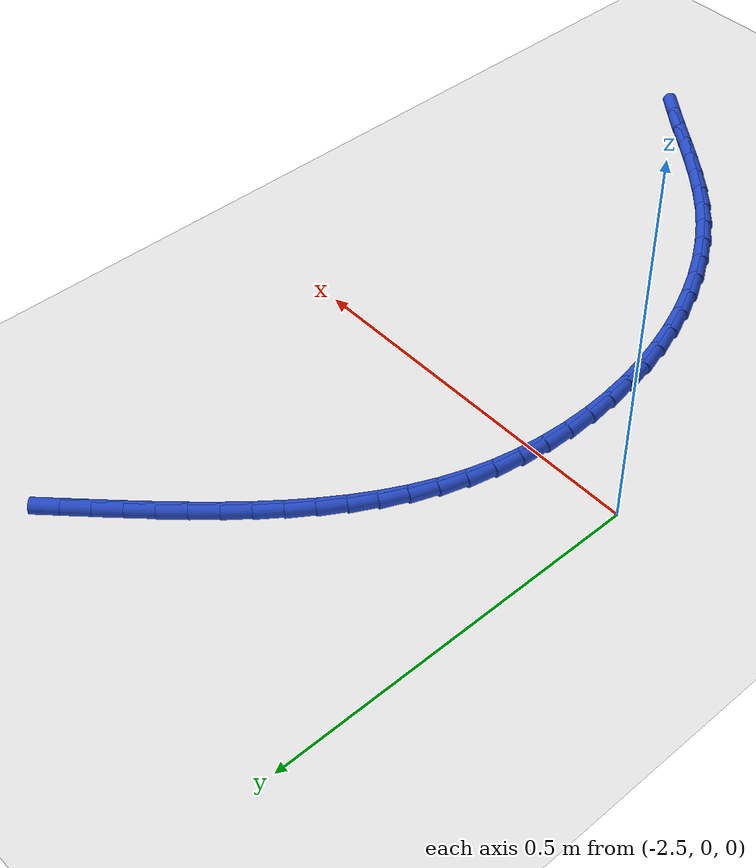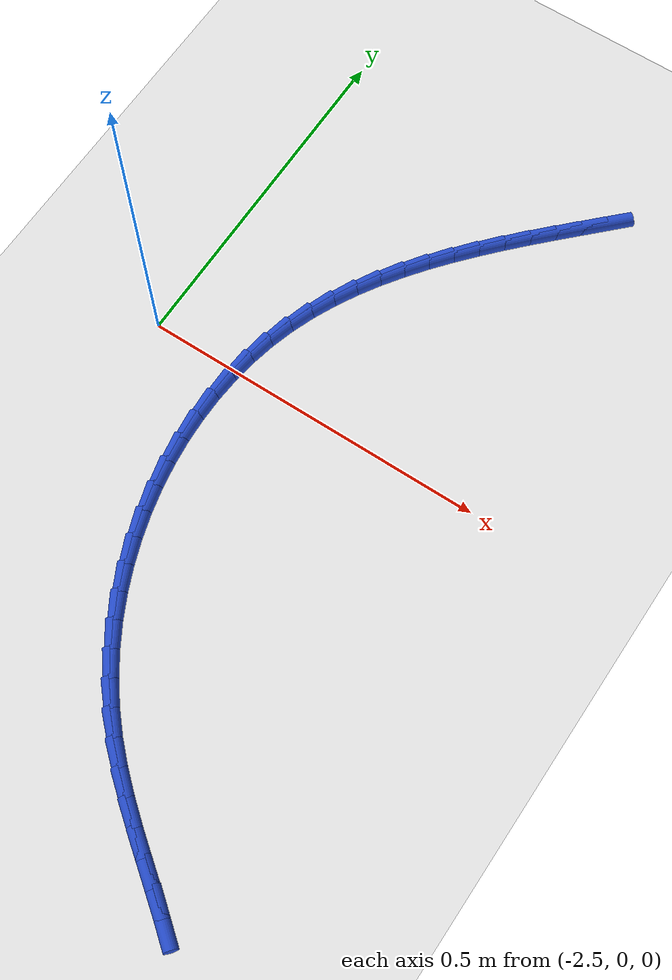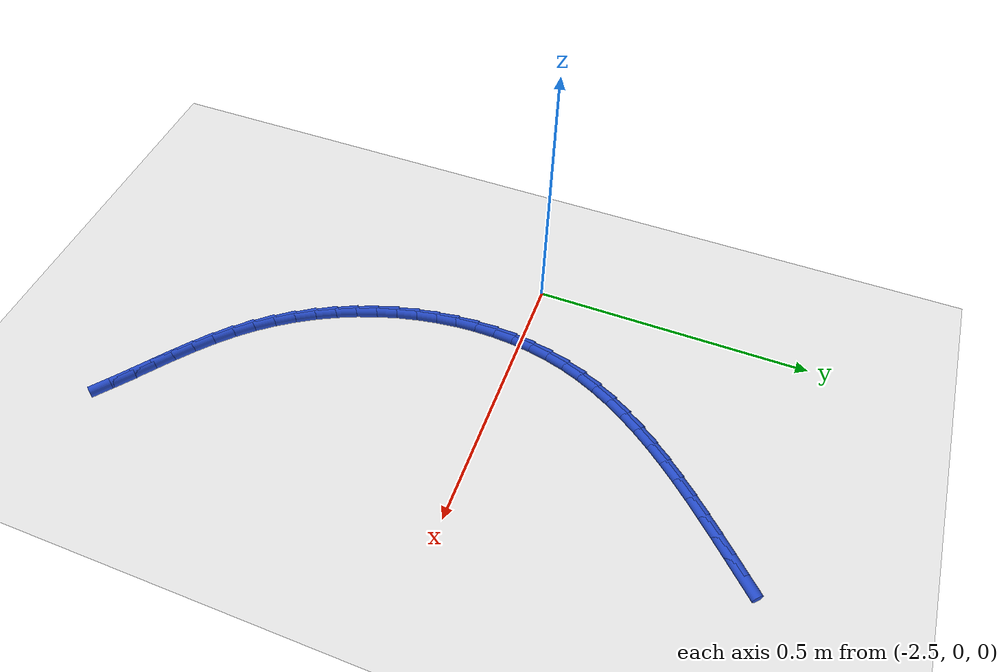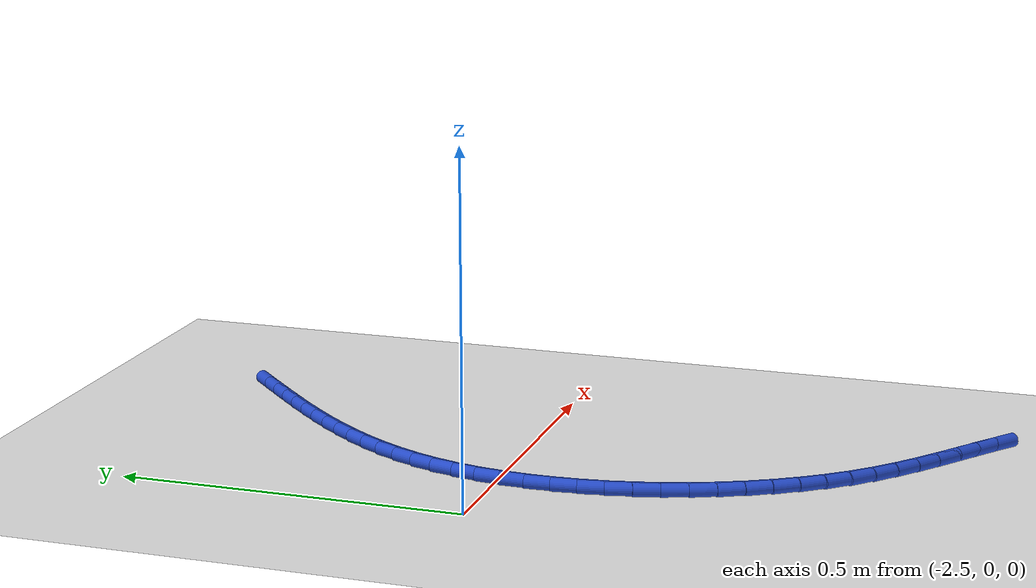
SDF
<sdf version="1.6">
 <world name="default">
  <model name="ground_plane">
   <static>1</static>
   <link name="link">
    <collision name="collision">
     <geometry><plane><normal>0 0 1</normal><size>100 100</size></plane></geometry>
     <surface><friction><ode><mu>100</mu><mu2>50</mu2></ode></friction></surface>
    </collision>
    <visual name="visual">
     <cast_shadows>0</cast_shadows>
     <geometry><plane><normal>0 0 1</normal><size>100 100</size></plane></geometry>
     <material>
      <script><uri>file://media/materials/scripts/gazebo.material</uri><name>Gazebo/WhiteGlow</name></script>
     </material>
    </visual>
   </link>
  </model>
  <model name="line">
   <link name="link_91">
    <pose>-2.0731282770076134 0.4647346134744752 0.01 0 1.57 0.7850160969951478</pose>
    <collision name="collision">
     <geometry><cylinder><radius>0.01</radius><length>0.08</length></cylinder></geometry>
    </collision>
    <visual name="visual">
     <material>
      <script><name>Gazebo/Blue</name><uri>file://media/materials/scripts/gazebo.material</uri></script>
     </material>
     <geometry><cylinder><radius>0.01</radius><length>0.08</length></cylinder></geometry>
    </visual>
   </link>
   <link name="link_92">
    <pose>-2.098696628706644 0.4391857919308715 0.01 0 1.57 0.7891813198001791</pose>
    <collision name="collision">
     <geometry><cylinder><radius>0.01</radius><length>0.08</length></cylinder></geometry>
    </collision>
    <visual name="visual">
     <material>
      <script><name>Gazebo/Blue</name><uri>file://media/materials/scripts/gazebo.material</uri></script>
     </material>
     <geometry><cylinder><radius>0.01</radius><length>0.08</length></cylinder></geometry>
    </visual>
   </link>
   <link name="link_93">
    <pose>-2.1243203595792073 0.41336744671030795 0.01 0 1.57 0.7986933886038305</pose>
    <collision name="collision">
     <geometry><cylinder><radius>0.01</radius><length>0.08</length></cylinder></geometry>
    </collision>
    <visual name="visual">
     <material>
      <script><name>Gazebo/Blue</name><uri>file://media/materials/scripts/gazebo.material</uri></script>
     </material>
     <geometry><cylinder><radius>0.01</radius><length>0.08</length></cylinder></geometry>
    </visual>
   </link>
   <link name="link_94">
    <pose>-2.1497878061855262 0.38721364352122845 0.01 0 1.57 0.8135720087023686</pose>
    <collision name="collision">
     <geometry><cylinder><radius>0.01</radius><length>0.08</length></cylinder></geometry>
    </collision>
    <visual name="visual">
     <material>
      <script><name>Gazebo/Blue</name><uri>file://media/materials/scripts/gazebo.material</uri></script>
     </material>
     <geometry><cylinder><radius>0.01</radius><length>0.08</length></cylinder></geometry>
    </visual>
   </link>
   <link name="link_95">
    <pose>-2.1748873050858264 0.3606584480720754 0.01 0 1.57 0.8339149153374718</pose>
    <collision name="collision">
     <geometry><cylinder><radius>0.01</radius><length>0.08</length></cylinder></geometry>
    </collision>
    <visual name="visual">
     <material>
      <script><name>Gazebo/Blue</name><uri>file://media/materials/scripts/gazebo.material</uri></script>
     </material>
     <geometry><cylinder><radius>0.01</radius><length>0.08</length></cylinder></geometry>
    </visual>
   </link>
   <link name="link_96">
    <pose>-2.1994071928403307 0.3336359260712931 0.01 0 1.57 0.8598864871139451</pose>
    <collision name="collision">
     <geometry><cylinder><radius>0.01</radius><length>0.08</length></cylinder></geometry>
    </collision>
    <visual name="visual">
     <material>
      <script><name>Gazebo/Blue</name><uri>file://media/materials/scripts/gazebo.material</uri></script>
     </material>
     <geometry><cylinder><radius>0.01</radius><length>0.08</length></cylinder></geometry>
    </visual>
   </link>
   <link name="link_97">
    <pose>-2.223135806009266 0.30608014322732424 0.01 0 1.57 0.8917025361502523</pose>
    <collision name="collision">
     <geometry><cylinder><radius>0.01</radius><length>0.08</length></cylinder></geometry>
    </collision>
    <visual name="visual">
     <material>
      <script><name>Gazebo/Blue</name><uri>file://media/materials/scripts/gazebo.material</uri></script>
     </material>
     <geometry><cylinder><radius>0.01</radius><length>0.08</length></cylinder></geometry>
    </visual>
   </link>
   <link name="link_98">
    <pose>-2.2458614811528554 0.2779251652486118 0.01 0 1.57 0.9296088730401142</pose>
    <collision name="collision">
     <geometry><cylinder><radius>0.01</radius><length>0.08</length></cylinder></geometry>
    </collision>
    <visual name="visual">
     <material>
      <script><name>Gazebo/Blue</name><uri>file://media/materials/scripts/gazebo.material</uri></script>
     </material>
     <geometry><cylinder><radius>0.01</radius><length>0.08</length></cylinder></geometry>
    </visual>
   </link>
   <link name="link_99">
    <pose>-2.267372554831324 0.2491050578435997 0.01 0 1.57 0.9738508156052724</pose>
    <collision name="collision">
     <geometry><cylinder><radius>0.01</radius><length>0.08</length></cylinder></geometry>
    </collision>
    <visual name="visual">
     <material>
      <script><name>Gazebo/Blue</name><uri>file://media/materials/scripts/gazebo.material</uri></script>
     </material>
     <geometry><cylinder><radius>0.01</radius><length>0.08</length></cylinder></geometry>
    </visual>
   </link>
   <link name="link_100">
    <pose>-2.287457363604895 0.21955388672073045 0.01 0 1.57 1.024630867916659</pose>
    <collision name="collision">
     <geometry><cylinder><radius>0.01</radius><length>0.08</length></cylinder></geometry>
    </collision>
    <visual name="visual">
     <material>
      <script><name>Gazebo/Blue</name><uri>file://media/materials/scripts/gazebo.material</uri></script>
     </material>
     <geometry><cylinder><radius>0.01</radius><length>0.08</length></cylinder></geometry>
    </visual>
   </link>
   <link name="link_101">
    <pose>-2.305904244033794 0.1892057175884481 0.01 0 1.57 1.082052891407234</pose>
    <collision name="collision">
     <geometry><cylinder><radius>0.01</radius><length>0.08</length></cylinder></geometry>
    </collision>
    <visual name="visual">
     <material>
      <script><name>Gazebo/Blue</name><uri>file://media/materials/scripts/gazebo.material</uri></script>
     </material>
     <geometry><cylinder><radius>0.01</radius><length>0.08</length></cylinder></geometry>
    </visual>
   </link>
   <link name="link_102">
    <pose>-2.322501532678246 0.15799461615519514 0.01 0 1.57 1.1460539444151898</pose>
    <collision name="collision">
     <geometry><cylinder><radius>0.01</radius><length>0.08</length></cylinder></geometry>
    </collision>
    <visual name="visual">
     <material>
      <script><name>Gazebo/Blue</name><uri>file://media/materials/scripts/gazebo.material</uri></script>
     </material>
     <geometry><cylinder><radius>0.01</radius><length>0.08</length></cylinder></geometry>
    </visual>
   </link>
   <link name="link_103">
    <pose>-2.337037566098474 0.12585464812941552 0.01 0 1.57 1.2163301300886096</pose>
    <collision name="collision">
     <geometry><cylinder><radius>0.01</radius><length>0.08</length></cylinder></geometry>
    </collision>
    <visual name="visual">
     <material>
      <script><name>Gazebo/Blue</name><uri>file://media/materials/scripts/gazebo.material</uri></script>
     </material>
     <geometry><cylinder><radius>0.01</radius><length>0.08</length></cylinder></geometry>
    </visual>
   </link>
   <link name="link_104">
    <pose>-2.349300680854704 0.09271987921955183 0.01 0 1.57 1.2910858427250669</pose>
    <collision name="collision">
     <geometry><cylinder><radius>0.01</radius><length>0.08</length></cylinder></geometry>
    </collision>
    <visual name="visual">
     <material>
      <script><name>Gazebo/Blue</name><uri>file://media/materials/scripts/gazebo.material</uri></script>
     </material>
     <geometry><cylinder><radius>0.01</radius><length>0.08</length></cylinder></geometry>
    </visual>
   </link>
   <link name="link_105">
    <pose>-2.3591135339761404 0.058557427983438666 0.01 0 1.57 1.3642204567835698</pose>
    <collision name="collision">
     <geometry><cylinder><radius>0.01</radius><length>0.08</length></cylinder></geometry>
    </collision>
    <visual name="visual">
     <material>
      <script><name>Gazebo/Blue</name><uri>file://media/materials/scripts/gazebo.material</uri></script>
     </material>
     <geometry><cylinder><radius>0.01</radius><length>0.08</length></cylinder></geometry>
    </visual>
   </link>
   <link name="link_106">
    <pose>-2.366462096678002 0.023491695188444565 0.01 0 1.57 1.4342474687986144</pose>
    <collision name="collision">
     <geometry><cylinder><radius>0.01</radius><length>0.08</length></cylinder></geometry>
    </collision>
    <visual name="visual">
     <material>
      <script><name>Gazebo/Blue</name><uri>file://media/materials/scripts/gazebo.material</uri></script>
     </material>
     <geometry><cylinder><radius>0.01</radius><length>0.08</length></cylinder></geometry>
    </visual>
   </link>
   <link name="link_107">
    <pose>-2.371380865561376 -0.012306185287518034 0.01 0 1.57 1.5015026934142728</pose>
    <collision name="collision">
     <geometry><cylinder><radius>0.01</radius><length>0.08</length></cylinder></geometry>
    </collision>
    <visual name="visual">
     <material>
      <script><name>Gazebo/Blue</name><uri>file://media/materials/scripts/gazebo.material</uri></script>
     </material>
     <geometry><cylinder><radius>0.01</radius><length>0.08</length></cylinder></geometry>
    </visual>
   </link>
   <link name="link_108">
    <pose>-2.373904345136904 -0.048665071949123076 0.01 0 1.57 1.566369136498777</pose>
    <collision name="collision">
     <geometry><cylinder><radius>0.01</radius><length>0.08</length></cylinder></geometry>
    </collision>
    <visual name="visual">
     <material>
      <script><name>Gazebo/Blue</name><uri>file://media/materials/scripts/gazebo.material</uri></script>
     </material>
     <geometry><cylinder><radius>0.01</radius><length>0.08</length></cylinder></geometry>
    </visual>
   </link>
   <link name="link_109">
    <pose>-2.374067039915225 -0.08541382330104269 0.01 0 1.57 -1.5123362823069888</pose>
    <collision name="collision">
     <geometry><cylinder><radius>0.01</radius><length>0.08</length></cylinder></geometry>
    </collision>
    <visual name="visual">
     <material>
      <script><name>Gazebo/Blue</name><uri>file://media/materials/scripts/gazebo.material</uri></script>
     </material>
     <geometry><cylinder><radius>0.01</radius><length>0.08</length></cylinder></geometry>
    </visual>
   </link>
   <link name="link_110">
    <pose>-2.3719034544069815 -0.12238129784795083 0.01 0 1.57 -1.451006424946242</pose>
    <collision name="collision">
     <geometry><cylinder><radius>0.01</radius><length>0.08</length></cylinder></geometry>
    </collision>
    <visual name="visual">
     <material>
      <script><name>Gazebo/Blue</name><uri>file://media/materials/scripts/gazebo.material</uri></script>
     </material>
     <geometry><cylinder><radius>0.01</radius><length>0.08</length></cylinder></geometry>
    </visual>
   </link>
   <link name="link_111">
    <pose>-2.367448093122813 -0.15939635409451958 0.01 0 1.57 -1.3908093324733144</pose>
    <collision name="collision">
     <geometry><cylinder><radius>0.01</radius><length>0.08</length></cylinder></geometry>
    </collision>
    <visual name="visual">
     <material>
      <script><name>Gazebo/Blue</name><uri>file://media/materials/scripts/gazebo.material</uri></script>
     </material>
     <geometry><cylinder><radius>0.01</radius><length>0.08</length></cylinder></geometry>
    </visual>
   </link>
   <link name="link_112">
    <pose>-2.360735460573359 -0.19628785054542242 0.01 0 1.57 -1.3313235553554066</pose>
    <collision name="collision">
     <geometry><cylinder><radius>0.01</radius><length>0.08</length></cylinder></geometry>
    </collision>
    <visual name="visual">
     <material>
      <script><name>Gazebo/Blue</name><uri>file://media/materials/scripts/gazebo.material</uri></script>
     </material>
     <geometry><cylinder><radius>0.01</radius><length>0.08</length></cylinder></geometry>
    </visual>
   </link>
   <link name="link_113">
    <pose>-2.351800061269262 -0.2328846457053323 0.01 0 1.57 -1.2721344408822588</pose>
    <collision name="collision">
     <geometry><cylinder><radius>0.01</radius><length>0.08</length></cylinder></geometry>
    </collision>
    <visual name="visual">
     <material>
      <script><name>Gazebo/Blue</name><uri>file://media/materials/scripts/gazebo.material</uri></script>
     </material>
     <geometry><cylinder><radius>0.01</radius><length>0.08</length></cylinder></geometry>
    </visual>
   </link>
   <link name="link_114">
    <pose>-2.340676399721161 -0.2690155980789233 0.01 0 1.57 -1.212836536507578</pose>
    <collision name="collision">
     <geometry><cylinder><radius>0.01</radius><length>0.08</length></cylinder></geometry>
    </collision>
    <visual name="visual">
     <material>
      <script><name>Gazebo/Blue</name><uri>file://media/materials/scripts/gazebo.material</uri></script>
     </material>
     <geometry><cylinder><radius>0.01</radius><length>0.08</length></cylinder></geometry>
    </visual>
   </link>
   <link name="link_115">
    <pose>-2.327398980439699 -0.30450956617086666 0.01 0 1.57 -1.153035709351538</pose>
    <collision name="collision">
     <geometry><cylinder><radius>0.01</radius><length>0.08</length></cylinder></geometry>
    </collision>
    <visual name="visual">
     <material>
      <script><name>Gazebo/Blue</name><uri>file://media/materials/scripts/gazebo.material</uri></script>
     </material>
     <geometry><cylinder><radius>0.01</radius><length>0.08</length></cylinder></geometry>
    </visual>
   </link>
   <link name="link_116">
    <pose>-2.3120023079355136 -0.339195408485836 0.01 0 1.57 -1.0923518269737227</pose>
    <collision name="collision">
     <geometry><cylinder><radius>0.01</radius><length>0.08</length></cylinder></geometry>
    </collision>
    <visual name="visual">
     <material>
      <script><name>Gazebo/Blue</name><uri>file://media/materials/scripts/gazebo.material</uri></script>
     </material>
     <geometry><cylinder><radius>0.01</radius><length>0.08</length></cylinder></geometry>
    </visual>
   </link>
   <link name="link_117">
    <pose>-2.294520886719247 -0.3729019835285047 0.01 0 1.57 -1.030422774343867</pose>
    <collision name="collision">
     <geometry><cylinder><radius>0.01</radius><length>0.08</length></cylinder></geometry>
    </collision>
    <visual name="visual">
     <material>
      <script><name>Gazebo/Blue</name><uri>file://media/materials/scripts/gazebo.material</uri></script>
     </material>
     <geometry><cylinder><radius>0.01</radius><length>0.08</length></cylinder></geometry>
    </visual>
   </link>
   <link name="link_118">
    <pose>-2.2749892213015395 -0.4054581498035465 0.01 0 1.57 -0.966910522377829</pose>
    <collision name="collision">
     <geometry><cylinder><radius>0.01</radius><length>0.08</length></cylinder></geometry>
    </collision>
    <visual name="visual">
     <material>
      <script><name>Gazebo/Blue</name><uri>file://media/materials/scripts/gazebo.material</uri></script>
     </material>
     <geometry><cylinder><radius>0.01</radius><length>0.08</length></cylinder></geometry>
    </visual>
   </link>
   <link name="link_119">
    <pose>-2.253441816193032 -0.43669276581563266 0.01 0 1.57 -0.9015098760614527</pose>
    <collision name="collision">
     <geometry><cylinder><radius>0.01</radius><length>0.08</length></cylinder></geometry>
    </collision>
    <visual name="visual">
     <material>
      <script><name>Gazebo/Blue</name><uri>file://media/materials/scripts/gazebo.material</uri></script>
     </material>
     <geometry><cylinder><radius>0.01</radius><length>0.08</length></cylinder></geometry>
    </visual>
   </link>
   <link name="link_120">
    <pose>-2.2299131759043647 -0.46643469006943716 0.01 0 1.57 -0.8339628176009831</pose>
    <collision name="collision">
     <geometry><cylinder><radius>0.01</radius><length>0.08</length></cylinder></geometry>
    </collision>
    <visual name="visual">
     <material>
      <script><name>Gazebo/Blue</name><uri>file://media/materials/scripts/gazebo.material</uri></script>
     </material>
     <geometry><cylinder><radius>0.01</radius><length>0.08</length></cylinder></geometry>
    </visual>
   </link>
   <link name="link_121">
    <pose>-2.204437867442937 -0.4945128508666194 0.01 0 1.57 -0.7678953192732931</pose>
    <collision name="collision">
     <geometry><cylinder><radius>0.01</radius><length>0.08</length></cylinder></geometry>
    </collision>
    <visual name="visual">
     <material>
      <script><name>Gazebo/Blue</name><uri>file://media/materials/scripts/gazebo.material</uri></script>
     </material>
     <geometry><cylinder><radius>0.01</radius><length>0.08</length></cylinder></geometry>
    </visual>
   </link>
   <link name="link_122">
    <pose>-2.1771473487187913 -0.5208643852096572 0.01 0 1.57 -0.7147145788583368</pose>
    <collision name="collision">
     <geometry><cylinder><radius>0.01</radius><length>0.08</length></cylinder></geometry>
    </collision>
    <visual name="visual">
     <material>
      <script><name>Gazebo/Blue</name><uri>file://media/materials/scripts/gazebo.material</uri></script>
     </material>
     <geometry><cylinder><radius>0.01</radius><length>0.08</length></cylinder></geometry>
    </visual>
   </link>
   <link name="link_123">
    <pose>-2.1484656655819117 -0.5457531951531814 0.01 0 1.57 -0.6763130079265162</pose>
    <collision name="collision">
     <geometry><cylinder><radius>0.01</radius><length>0.08</length></cylinder></geometry>
    </collision>
    <visual name="visual">
     <material>
      <script><name>Gazebo/Blue</name><uri>file://media/materials/scripts/gazebo.material</uri></script>
     </material>
     <geometry><cylinder><radius>0.01</radius><length>0.08</length></cylinder></geometry>
    </visual>
   </link>
   <link name="link_124">
    <pose>-2.1188718762533125 -0.5695046211019229 0.01 0 1.57 -0.6523774834785016</pose>
    <collision name="collision">
     <geometry><cylinder><radius>0.01</radius><length>0.08</length></cylinder></geometry>
    </collision>
    <visual name="visual">
     <material>
      <script><name>Gazebo/Blue</name><uri>file://media/materials/scripts/gazebo.material</uri></script>
     </material>
     <geometry><cylinder><radius>0.01</radius><length>0.08</length></cylinder></geometry>
    </visual>
   </link>
   <link name="link_125">
    <pose>-2.088845038954005 -0.592444003460611 0.01 0 1.57 -0.6427975446913763</pose>
    <collision name="collision">
     <geometry><cylinder><radius>0.01</radius><length>0.08</length></cylinder></geometry>
    </collision>
    <visual name="visual">
     <material>
      <script><name>Gazebo/Blue</name><uri>file://media/materials/scripts/gazebo.material</uri></script>
     </material>
     <geometry><cylinder><radius>0.01</radius><length>0.08</length></cylinder></geometry>
    </visual>
   </link>
   <link name="link_126">
    <pose>-2.0588642119050027 -0.6148966826339767 0.01 0 1.57 -0.6478216172154914</pose>
    <collision name="collision">
     <geometry><cylinder><radius>0.01</radius><length>0.08</length></cylinder></geometry>
    </collision>
    <visual name="visual">
     <material>
      <script><name>Gazebo/Blue</name><uri>file://media/materials/scripts/gazebo.material</uri></script>
     </material>
     <geometry><cylinder><radius>0.01</radius><length>0.08</length></cylinder></geometry>
    </visual>
   </link>
   <link name="link_127">
    <pose>-2.0294084533273176 -0.6371879990267482 0.01 0 1.57 -0.668148216998505</pose>
    <collision name="collision">
     <geometry><cylinder><radius>0.01</radius><length>0.08</length></cylinder></geometry>
    </collision>
    <visual name="visual">
     <material>
      <script><name>Gazebo/Blue</name><uri>file://media/materials/scripts/gazebo.material</uri></script>
     </material>
     <geometry><cylinder><radius>0.01</radius><length>0.08</length></cylinder></geometry>
    </visual>
   </link>
  </model>
 </world>
</sdf>
